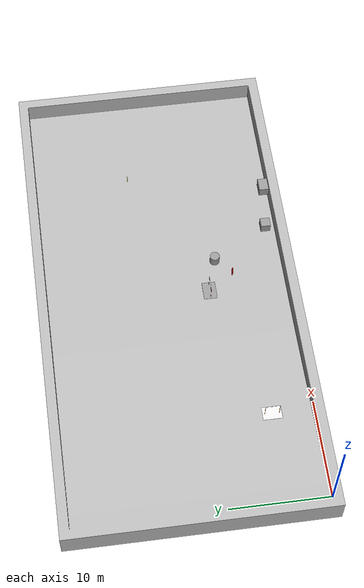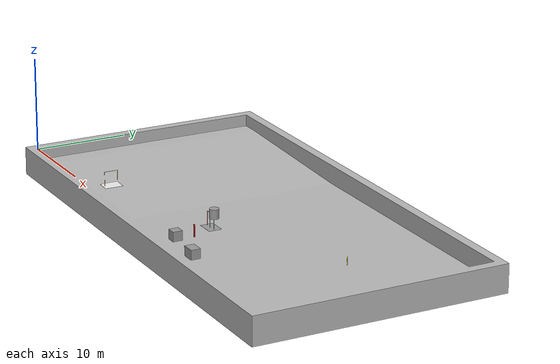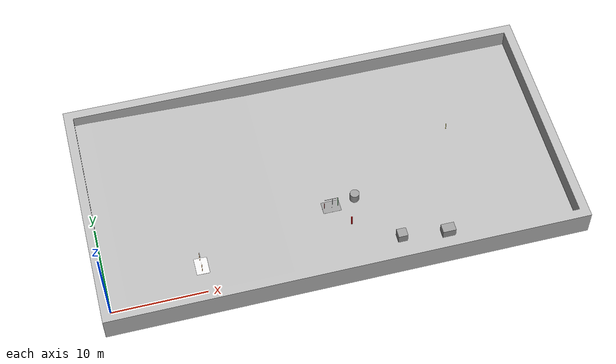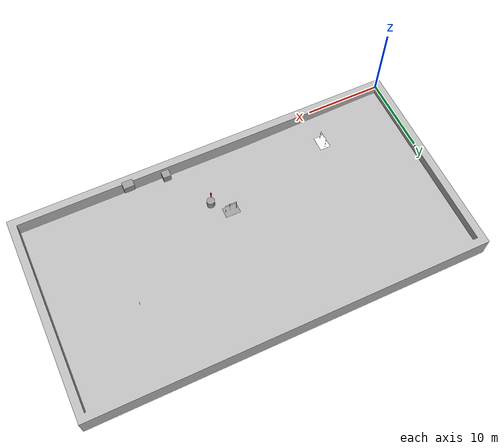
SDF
<sdf version="1.7">
 <world name="water">
  <gravity>0 0 -9.8</gravity>
  <magnetic_field>6e-06 2.3e-05 -4.2e-05</magnetic_field>
  <atmosphere type="adiabatic"/>
  <physics name="default_physics" default="0" type="ode">
   <max_step_size>0.001</max_step_size>
   <real_time_factor>1</real_time_factor>
   <real_time_update_rate>1000</real_time_update_rate>
  </physics>
  <scene>
   <ambient>110 130 150 255</ambient>
   <shadows>1</shadows>
   <background>0.7 0.7 0.7 1</background>
   <fog><color>0.1 0.4 0.4 1.0</color><type>linear</type><density>25</density><start>0</start><end>30</end></fog>
  </scene>
  <light name="sun1" type="directional">
   <pose>25 12.5 50 0 -0 0</pose>
   <diffuse>1 1 1 1</diffuse>
   <specular>0.1 0.1 0.1 1</specular>
   <direction>0.3 0.3 -1</direction>
   <cast_shadows>0</cast_shadows>
   <attenuation><range>10</range></attenuation>
   <spot><inner_angle>0</inner_angle><outer_angle>0</outer_angle><falloff>0</falloff></spot>
  </light>
  <light name="sun_diffuse" type="directional">
   <pose>25 12.5 1.8 0 -0 0</pose>
   <diffuse>0.6 0.6 0.6 1</diffuse>
   <specular>0 0 0 1</specular>
   <direction>-0.3 -0.3 -1</direction>
   <cast_shadows>0</cast_shadows>
   <attenuation><range>10</range></attenuation>
   <spot><inner_angle>0</inner_angle><outer_angle>0</outer_angle><falloff>0</falloff></spot>
  </light>
  <model name="world_ned">
   <static>1</static>
   <link name="world_ned">
    <gravity>0</gravity>
    <pose>0 0 0 -3.14159 -0 1.5708</pose>
    <visual name="N_visual">
     <pose>0.25 0 0 1.5708 -0 1.5708</pose>
     <geometry><cylinder><radius>0.01</radius><length>0.5</length></cylinder></geometry>
     <material>
      <script><uri>file://media/materials/scripts/gazebo.material</uri><name>Gazebo/Red</name></script>
     </material>
    </visual>
    <visual name="E_visual">
     <pose>0 0.25 0 1.5708 -0 0</pose>
     <geometry><cylinder><radius>0.01</radius><length>0.5</length></cylinder></geometry>
     <material>
      <script><uri>file://media/materials/scripts/gazebo.material</uri><name>Gazebo/Green</name></script>
     </material>
    </visual>
    <visual name="D_visual">
     <pose>0 0 0.25 0 -0 0</pose>
     <geometry><cylinder><radius>0.01</radius><length>0.5</length></cylinder></geometry>
     <material>
      <script><uri>file://media/materials/scripts/gazebo.material</uri><name>Gazebo/Blue</name></script>
     </material>
    </visual>
   </link>
  </model>
  <spherical_coordinates>
   <surface_model>EARTH_WGS84</surface_model>
   <latitude_deg>0</latitude_deg>
   <longitude_deg>0</longitude_deg>
   <elevation>0</elevation>
   <heading_deg>0</heading_deg>
  </spherical_coordinates>
  <model name="pool">
   <link name="Base_link">
    <inertial>
     <pose>-0 0 0.75567 0 -0 0</pose>
     <mass>1.2379e+07</mass>
     <inertia>
      <ixx>9.3556e+08</ixx>
      <ixy>-5.1e-07</ixy>
      <ixz>2.8051e-08</ixz>
      <iyy>3.1435e+09</iyy>
      <iyz>6.3008e-08</iyz>
      <izz>4.0668e+09</izz>
     </inertia>
    </inertial>
    <visual name="Base_link_visual">
     <geometry>
      <mesh><scale>1 1 1</scale><uri>/home/grigorian/simulator/src/pool/meshes/pool_final.DAE</uri></mesh>
     </geometry>
     <material><shader type="pixel"/></material>
    </visual>
    <collision name="Base_link_collision">
     <geometry>
      <mesh><uri>/home/grigorian/simulator/src/pool/meshes/pool_final.DAE</uri><scale>1 1 1</scale></mesh>
     </geometry>
     <surface>
      <friction>
       <ode><mu>1</mu><mu2>1</mu2><fdir1>0 0 0</fdir1><slip1>0</slip1><slip2>0</slip2></ode>
       <torsional>
        <coefficient>1</coefficient>
        <patch_radius>0</patch_radius>
        <surface_radius>0</surface_radius>
        <use_patch_radius>1</use_patch_radius>
        <ode><slip>0</slip></ode>
       </torsional>
      </friction>
      <bounce><restitution_coefficient>0</restitution_coefficient><threshold>1e+06</threshold></bounce>
      <contact>
       <collide_without_contact>0</collide_without_contact>
       <collide_without_contact_bitmask>1</collide_without_contact_bitmask>
       <collide_bitmask>1</collide_bitmask>
       <ode>
        <soft_cfm>0</soft_cfm>
        <soft_erp>0.2</soft_erp>
        <kp>1e+13</kp>
        <kd>1</kd>
        <max_vel>0.01</max_vel>
        <min_depth>0</min_depth>
       </ode>
       <bullet>
        <split_impulse>1</split_impulse>
        <split_impulse_penetration_threshold>-0.01</split_impulse_penetration_threshold>
        <soft_cfm>0</soft_cfm>
        <soft_erp>0.2</soft_erp>
        <kp>1e+13</kp>
        <kd>1</kd>
       </bullet>
      </contact>
     </surface>
    </collision>
   </link>
   <static>1</static>
   <pose>25 12.5 -2.9 0 -0 0</pose>
  </model>
  <model name="gates_final">
   <link name="Base_parent_link">
    <inertial>
     <pose>-0.005114 0.043999 0.168428 0 -0 0</pose>
     <mass>259.211</mass>
     <inertia>
      <ixx>84.1328</ixx>
      <ixy>0.0120685</ixy>
      <ixz>-0.229913</ixz>
      <iyy>136.173</iyy>
      <iyz>1.97802</iyz>
      <izz>122.116</izz>
     </inertia>
    </inertial>
    <collision name="Base_parent_link_collision">
     <geometry>
      <mesh>
       <scale>1 1 1</scale>
       <uri>/home/grigorian/simulator/src/gates_final/meshes/Base_parent_link.STL</uri>
      </mesh>
     </geometry>
    </collision>
    <collision name="Base_parent_link_fixed_joint_lump__Left_link_collision_1">
     <pose>0 0 0 1.5708 -0 0</pose>
     <geometry>
      <mesh><scale>1 1 1</scale><uri>/home/grigorian/simulator/src/gates_final/meshes/Left_link.STL</uri></mesh>
     </geometry>
    </collision>
    <collision name="Base_parent_link_fixed_joint_lump__Right_link_collision_2">
     <pose>0 0 0 1.5708 -0 0</pose>
     <geometry>
      <mesh><scale>1 1 1</scale><uri>/home/grigorian/simulator/src/gates_final/meshes/Right_link.STL</uri></mesh>
     </geometry>
    </collision>
    <visual name="Base_parent_link_visual">
     <geometry>
      <mesh>
       <scale>1 1 1</scale>
       <uri>/home/grigorian/simulator/src/gates_final/meshes/Base_parent_link.STL</uri>
      </mesh>
     </geometry>
     <material>
      <script><name>Gazebo/Grey</name><uri>file://media/materials/scripts/gazebo.material</uri></script>
     </material>
    </visual>
    <visual name="Base_parent_link_fixed_joint_lump__Left_link_visual_1">
     <pose>0 0 0 1.5708 -0 0</pose>
     <geometry>
      <mesh><scale>1 1 1</scale><uri>/home/grigorian/simulator/src/gates_final/meshes/Left_link.STL</uri></mesh>
     </geometry>
     <material>
      <script><name>Gazebo/Red</name><uri>file://media/materials/scripts/gazebo.material</uri></script>
     </material>
    </visual>
    <visual name="Base_parent_link_fixed_joint_lump__Right_link_visual_2">
     <pose>0 0 0 1.5708 -0 0</pose>
     <geometry>
      <mesh><scale>1 1 1</scale><uri>/home/grigorian/simulator/src/gates_final/meshes/Right_link.STL</uri></mesh>
     </geometry>
     <material>
      <script><name>Gazebo/Green</name><uri>file://media/materials/scripts/gazebo.material</uri></script>
     </material>
    </visual>
   </link>
   <pose>25.0001 7.9999 -1.89 0 -0 5.8e-05</pose>
  </model>
  <model name="gates_qualification">
   <link name="Base_parent_link">
    <inertial>
     <pose>-0.005114 0.043791 0.166619 0 -0 0</pose>
     <mass>259.214</mass>
     <inertia>
      <ixx>84.2945</ixx>
      <ixy>0.0120116</ixy>
      <ixz>-0.230412</ixz>
      <iyy>136.398</iyy>
      <iyz>3.40993</iyz>
      <izz>122.058</izz>
     </inertia>
    </inertial>
    <collision name="Base_parent_link_collision">
     <geometry>
      <mesh>
       <scale>1 1 1</scale>
       <uri>/home/grigorian/simulator/src/gates_qualification/meshes/Base_parent_link.STL</uri>
      </mesh>
     </geometry>
    </collision>
    <collision name="Base_parent_link_fixed_joint_lump__Left_link_collision_1">
     <pose>0 0 0 1.5708 -0 0</pose>
     <geometry>
      <mesh>
       <scale>1 1 1</scale>
       <uri>/home/grigorian/simulator/src/gates_qualification/meshes/Left_link.STL</uri>
      </mesh>
     </geometry>
    </collision>
    <collision name="Base_parent_link_fixed_joint_lump__Right_link_collision_2">
     <pose>0 0 0 1.5708 -0 0</pose>
     <geometry>
      <mesh>
       <scale>1 1 1</scale>
       <uri>/home/grigorian/simulator/src/gates_qualification/meshes/Right_link.STL</uri>
      </mesh>
     </geometry>
    </collision>
    <visual name="Base_parent_link_visual">
     <geometry>
      <mesh>
       <scale>1 1 1</scale>
       <uri>/home/grigorian/simulator/src/gates_qualification/meshes/Base_parent_link.STL</uri>
      </mesh>
     </geometry>
     <material>
      <script><name>Gazebo/White</name><uri>file://media/materials/scripts/gazebo.material</uri></script>
     </material>
    </visual>
    <visual name="Base_parent_link_fixed_joint_lump__Left_link_visual_1">
     <pose>0 0 0 1.5708 -0 0</pose>
     <geometry>
      <mesh>
       <scale>1 1 1</scale>
       <uri>/home/grigorian/simulator/src/gates_qualification/meshes/Left_link.STL</uri>
      </mesh>
     </geometry>
     <material>
      <script><name>Gazebo/Orange</name><uri>file://media/materials/scripts/gazebo.material</uri></script>
     </material>
    </visual>
    <visual name="Base_parent_link_fixed_joint_lump__Right_link_visual_2">
     <pose>0 0 0 1.5708 -0 0</pose>
     <geometry>
      <mesh>
       <scale>1 1 1</scale>
       <uri>/home/grigorian/simulator/src/gates_qualification/meshes/Right_link.STL</uri>
      </mesh>
     </geometry>
     <material>
      <script><name>Gazebo/Orange</name><uri>file://media/materials/scripts/gazebo.material</uri></script>
     </material>
    </visual>
   </link>
   <pose>10 4 -1.50737 7e-05 -0 -1.5708</pose>
  </model>
  <model name="flare">
   <link name="base_link">
    <inertial>
     <mass>250</mass>
     <inertia>
      <ixx>2.70025</ixx>
      <ixy>-0.00065535</ixy>
      <ixz>-0.00028377</ixz>
      <iyy>2.00731</iyy>
      <iyz>-0.0082089</iyz>
      <izz>2.69672</izz>
     </inertia>
    </inertial>
    <collision name="base_link_collision">
     <geometry>
      <mesh><scale>1 1 1</scale><uri>/home/grigorian/simulator/src/flare/meshes/base_link.STL</uri></mesh>
     </geometry>
    </collision>
    <visual name="base_link_visual">
     <geometry>
      <mesh><scale>1 1 1</scale><uri>/home/grigorian/simulator/src/flare/meshes/base_link.STL</uri></mesh>
     </geometry>
     <material>
      <script><name>Gazebo/Yellow</name><uri>file://media/materials/scripts/gazebo.material</uri></script>
     </material>
    </visual>
   </link>
   <pose>40 15 -1.90034 6e-06 -5e-06 0</pose>
  </model>
  <model name="unit_box_1,4">
   <link name="link">
    <inertial>
     <mass>1.40002</mass>
     <inertia>
      <ixx>0.233337</ixx>
      <ixy>0</ixy>
      <ixz>0</ixz>
      <iyy>0.345343</iyy>
      <iyz>0</iyz>
      <izz>0.345343</izz>
     </inertia>
    </inertial>
    <visual name="visual">
     <geometry><box><size>1.40001 1 1</size></box></geometry>
     <material>
      <script><name>Gazebo/Grey</name><uri>file://media/materials/scripts/gazebo.material</uri></script>
      <shader type="pixel"><normal_map>__default__</normal_map></shader>
     </material>
    </visual>
    <collision name="collision">
     <geometry><box><size>1.40001 1 1</size></box></geometry>
     <surface>
      <friction>
       <ode><mu>1</mu><mu2>1</mu2><fdir1>0 0 0</fdir1><slip1>0</slip1><slip2>0</slip2></ode>
       <torsional>
        <coefficient>1</coefficient>
        <patch_radius>0</patch_radius>
        <surface_radius>0</surface_radius>
        <use_patch_radius>1</use_patch_radius>
        <ode><slip>0</slip></ode>
       </torsional>
      </friction>
      <bounce><restitution_coefficient>0</restitution_coefficient><threshold>1e+06</threshold></bounce>
      <contact>
       <collide_without_contact>0</collide_without_contact>
       <collide_without_contact_bitmask>1</collide_without_contact_bitmask>
       <collide_bitmask>1</collide_bitmask>
       <ode>
        <soft_cfm>0</soft_cfm>
        <soft_erp>0.2</soft_erp>
        <kp>1e+13</kp>
        <kd>1</kd>
        <max_vel>0.01</max_vel>
        <min_depth>0</min_depth>
       </ode>
       <bullet>
        <split_impulse>1</split_impulse>
        <split_impulse_penetration_threshold>-0.01</split_impulse_penetration_threshold>
        <soft_cfm>0</soft_cfm>
        <soft_erp>0.2</soft_erp>
        <kp>1e+13</kp>
        <kd>1</kd>
       </bullet>
      </contact>
     </surface>
    </collision>
   </link>
   <static>0</static>
   <pose>35.6921 0.744559 0.5 0 -0 0</pose>
  </model>
  <model name="unit_box">
   <pose>30.8587 1.32696 0.5 0 -0 0</pose>
   <link name="link">
    <inertial>
     <mass>1</mass>
     <inertia>
      <ixx>0.166667</ixx>
      <ixy>0</ixy>
      <ixz>0</ixz>
      <iyy>0.166667</iyy>
      <iyz>0</iyz>
      <izz>0.166667</izz>
     </inertia>
    </inertial>
    <collision name="collision"><geometry><box><size>1 1 1</size></box></geometry></collision>
    <visual name="visual">
     <geometry><box><size>1 1 1</size></box></geometry>
     <material>
      <script><name>Gazebo/Grey</name><uri>file://media/materials/scripts/gazebo.material</uri></script>
     </material>
    </visual>
   </link>
  </model>
  <model name="unit_cylinder_4mm_d">
   <link name="link">
    <inertial>
     <mass>0.00301041</mass>
     <inertia>
      <ixx>0.00025143</ixx>
      <ixy>0</ixy>
      <ixz>0</ixz>
      <iyy>0.00025143</iyy>
      <iyz>0</iyz>
      <izz>1.13e-06</izz>
     </inertia>
    </inertial>
    <visual name="visual">
     <geometry><cylinder><radius>0.02</radius><length>1.5</length></cylinder></geometry>
     <material>
      <script><name>Gazebo/Grey</name><uri>file://media/materials/scripts/gazebo.material</uri></script>
      <shader type="pixel"><normal_map>__default__</normal_map></shader>
      <ambient>0.3 0.3 0.3 1</ambient>
      <diffuse>0.7 0.7 0.7 1</diffuse>
      <specular>0.01 0.01 0.01 1</specular>
      <emissive>0 0 0 1</emissive>
     </material>
    </visual>
    <collision name="collision">
     <geometry><cylinder><radius>0.027437</radius><length>1</length></cylinder></geometry>
     <surface>
      <friction>
       <ode><mu>1</mu><mu2>1</mu2><fdir1>0 0 0</fdir1><slip1>0</slip1><slip2>0</slip2></ode>
       <torsional>
        <coefficient>1</coefficient>
        <patch_radius>0</patch_radius>
        <surface_radius>0</surface_radius>
        <use_patch_radius>1</use_patch_radius>
        <ode><slip>0</slip></ode>
       </torsional>
      </friction>
      <bounce><restitution_coefficient>0</restitution_coefficient><threshold>1e+06</threshold></bounce>
      <contact>
       <collide_without_contact>0</collide_without_contact>
       <collide_without_contact_bitmask>1</collide_without_contact_bitmask>
       <collide_bitmask>1</collide_bitmask>
       <ode>
        <soft_cfm>0</soft_cfm>
        <soft_erp>0.2</soft_erp>
        <kp>1e+13</kp>
        <kd>1</kd>
        <max_vel>0.01</max_vel>
        <min_depth>0</min_depth>
       </ode>
       <bullet>
        <split_impulse>1</split_impulse>
        <split_impulse_penetration_threshold>-0.01</split_impulse_penetration_threshold>
        <soft_cfm>0</soft_cfm>
        <soft_erp>0.2</soft_erp>
        <kp>1e+13</kp>
        <kd>1</kd>
       </bullet>
      </contact>
     </surface>
    </collision>
   </link>
   <static>0</static>
   <pose>25.0919 7.89355 -1.10843 -3.11421 0.005954 1.57501</pose>
  </model>
  <model name="red_flare">
   <link name="link">
    <inertial>
     <mass>1</mass>
     <inertia>
      <ixx>0.335626</ixx>
      <ixy>0</ixy>
      <ixz>0</ixz>
      <iyy>0.335626</iyy>
      <iyz>0</iyz>
      <izz>0.326156</izz>
     </inertia>
    </inertial>
    <visual name="visual">
     <geometry><cylinder><radius>0.075</radius><length>1.5</length></cylinder></geometry>
     <material>
      <script><name>Gazebo/Gray</name><uri>file://media/materials/scripts/gazebo.material</uri></script>
      <shader type="pixel"><normal_map>__default__</normal_map></shader>
      <ambient>0.7 0.01 0.01 1</ambient>
      <diffuse>0.7 0.01 0.01 1</diffuse>
      <specular>0.01 0.01 0.01 1</specular>
      <emissive>0 0 0 1</emissive>
     </material>
    </visual>
    <collision name="collision">
     <geometry><cylinder><radius>0.075</radius><length>1.5</length></cylinder></geometry>
     <surface>
      <friction>
       <ode><mu>1</mu><mu2>1</mu2><fdir1>0 0 0</fdir1><slip1>0</slip1><slip2>0</slip2></ode>
       <torsional>
        <coefficient>1</coefficient>
        <patch_radius>0</patch_radius>
        <surface_radius>0</surface_radius>
        <use_patch_radius>1</use_patch_radius>
        <ode><slip>0</slip></ode>
       </torsional>
      </friction>
      <bounce><restitution_coefficient>0</restitution_coefficient><threshold>1e+06</threshold></bounce>
      <contact>
       <collide_without_contact>0</collide_without_contact>
       <collide_without_contact_bitmask>1</collide_without_contact_bitmask>
       <collide_bitmask>1</collide_bitmask>
       <ode>
        <soft_cfm>0</soft_cfm>
        <soft_erp>0.2</soft_erp>
        <kp>1e+13</kp>
        <kd>1</kd>
        <max_vel>0.01</max_vel>
        <min_depth>0</min_depth>
       </ode>
       <bullet>
        <split_impulse>1</split_impulse>
        <split_impulse_penetration_threshold>-0.01</split_impulse_penetration_threshold>
        <soft_cfm>0</soft_cfm>
        <soft_erp>0.2</soft_erp>
        <kp>1e+13</kp>
        <kd>1</kd>
       </bullet>
      </contact>
     </surface>
    </collision>
   </link>
   <static>0</static>
   <pose>26.5932 5.40297 -1.35047 0 -0 0</pose>
  </model>
  <model name="unit_cylinder">
   <pose>27.3421 7.22832 0.5 0 -0 0</pose>
   <link name="link">
    <inertial>
     <mass>1</mass>
     <inertia><ixx>0.145833</ixx><ixy>0</ixy><ixz>0</ixz><iyy>0.145833</iyy><iyz>0</iyz><izz>0.125</izz></inertia>
    </inertial>
    <collision name="collision">
     <geometry><cylinder><radius>0.5</radius><length>1</length></cylinder></geometry>
    </collision>
    <visual name="visual">
     <geometry><cylinder><radius>0.5</radius><length>1</length></cylinder></geometry>
     <material>
      <script><name>Gazebo/Grey</name><uri>file://media/materials/scripts/gazebo.material</uri></script>
     </material>
    </visual>
   </link>
  </model>
 </world>
</sdf>
